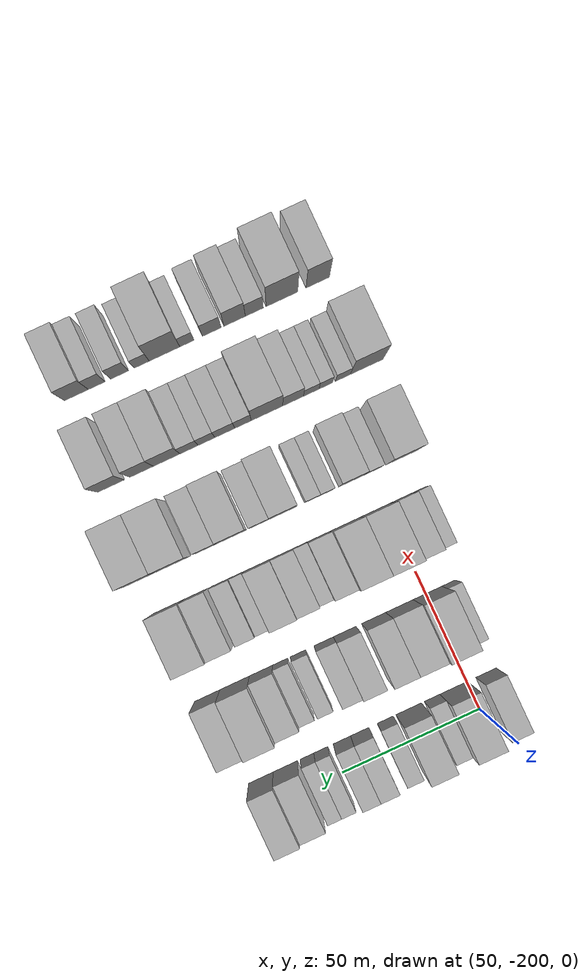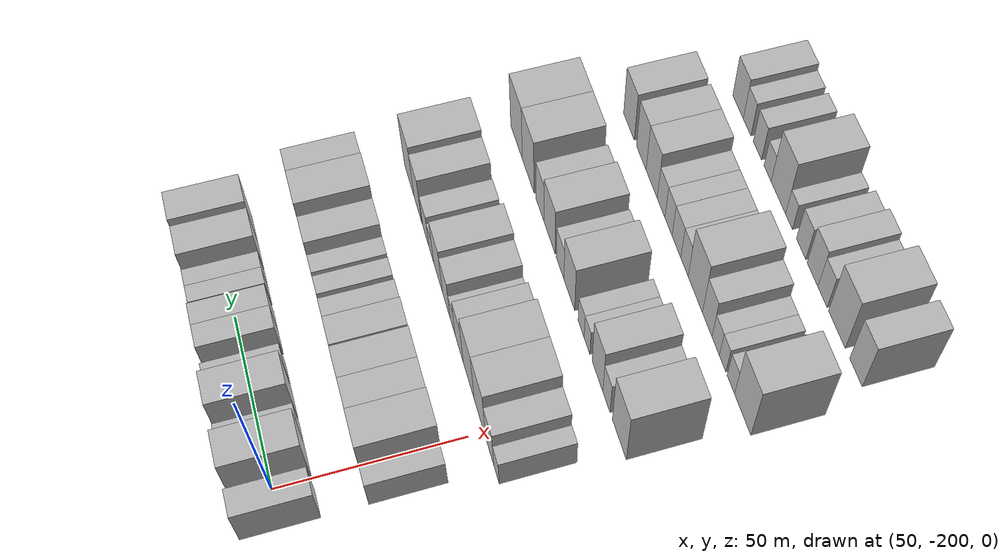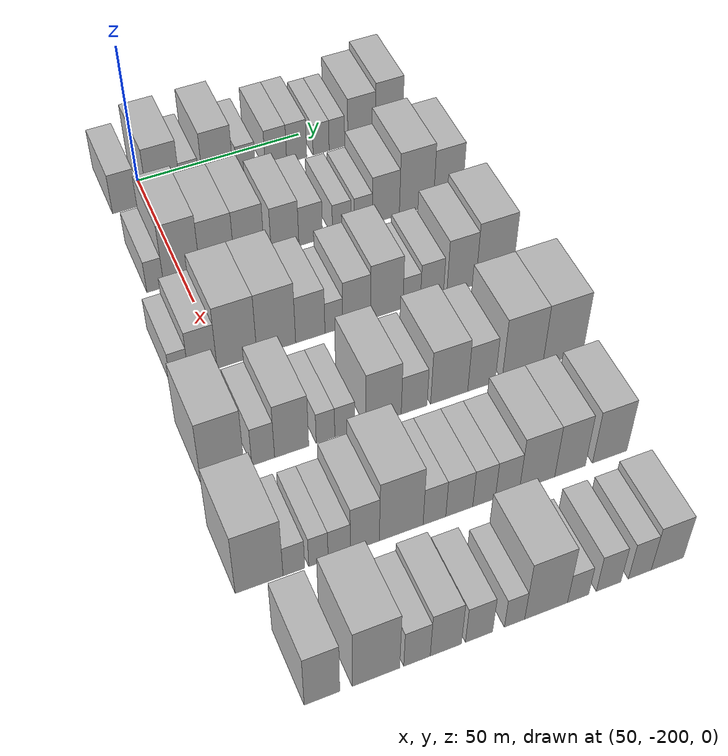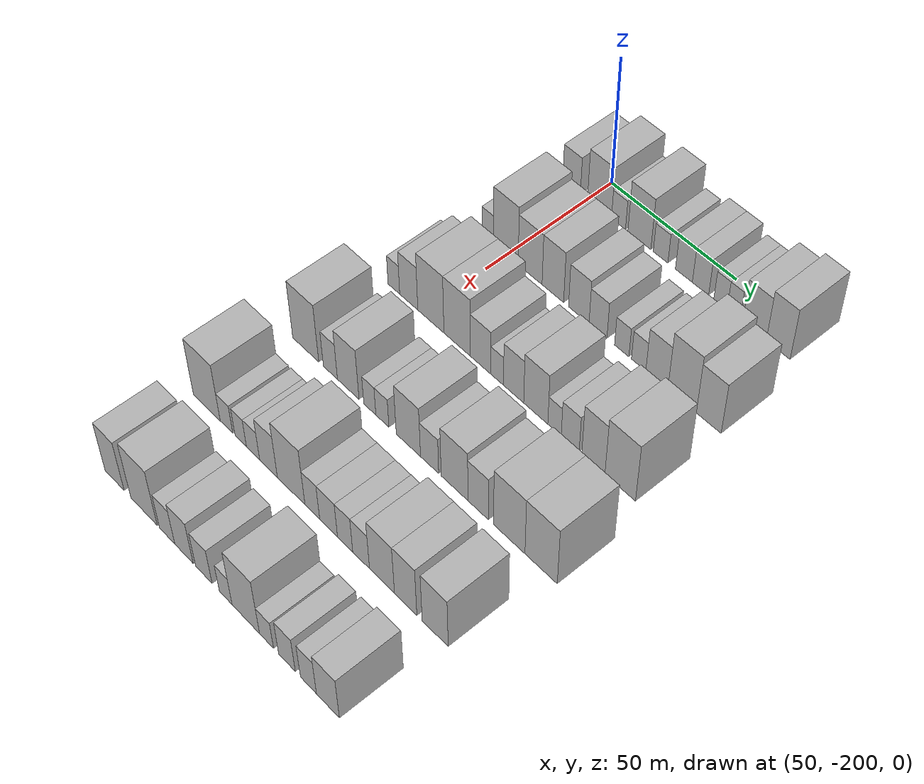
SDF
<sdf version="1.6">
 <world name="default">
  <model name="building_32">
   <static>1</static>
   <pose>50.0000 -206.8632 0 0.000000 0.000000 0.000000</pose>
   <link name="link">
    <pose>0 0 7.50 0 0 0</pose>
    <collision name="collision"><geometry><box><size>20.0000 7.4507 15.0000</size></box></geometry></collision>
    <visual name="visual">
     <cast_shadows>0</cast_shadows>
     <geometry><box><size>20.0000 7.4507 15.0000</size></box></geometry>
     <material>
      <script>
       <uri>model://HANNAS_wall/materials/scripts</uri>
       <uri>model://HANNAS_wall/materials/textures</uri>
       <name>vrc/HANNAS_wall</name>
      </script>
     </material>
    </visual>
   </link>
  </model>
  <model name="building_33">
   <static>1</static>
   <pose>50.0000 -195.1526 0 0.000000 0.000000 0.000000</pose>
   <link name="link">
    <pose>0 0 10.50 0 0 0</pose>
    <collision name="collision"><geometry><box><size>20.0000 9.9706 21.0000</size></box></geometry></collision>
    <visual name="visual">
     <cast_shadows>0</cast_shadows>
     <geometry><box><size>20.0000 9.9706 21.0000</size></box></geometry>
     <material>
      <script>
       <uri>model://HANNAS_wall/materials/scripts</uri>
       <uri>model://HANNAS_wall/materials/textures</uri>
       <name>vrc/HANNAS_wall</name>
      </script>
     </material>
    </visual>
   </link>
  </model>
  <model name="building_34">
   <static>1</static>
   <pose>50.0000 -187.2822 0 0.000000 0.000000 0.000000</pose>
   <link name="link">
    <pose>0 0 6.00 0 0 0</pose>
    <collision name="collision"><geometry><box><size>20.0000 5.7702 12.0000</size></box></geometry></collision>
    <visual name="visual">
     <cast_shadows>0</cast_shadows>
     <geometry><box><size>20.0000 5.7702 12.0000</size></box></geometry>
     <material>
      <script>
       <uri>model://HANNAS_wall/materials/scripts</uri>
       <uri>model://HANNAS_wall/materials/textures</uri>
       <name>vrc/HANNAS_wall</name>
      </script>
     </material>
    </visual>
   </link>
  </model>
  <model name="building_35">
   <static>1</static>
   <pose>50.0000 -178.7519 0 0.000000 0.000000 0.000000</pose>
   <link name="link">
    <pose>0 0 10.50 0 0 0</pose>
    <collision name="collision"><geometry><box><size>20.0000 9.2904 21.0000</size></box></geometry></collision>
    <visual name="visual">
     <cast_shadows>0</cast_shadows>
     <geometry><box><size>20.0000 9.2904 21.0000</size></box></geometry>
     <material>
      <script>
       <uri>model://HANNAS_wall/materials/scripts</uri>
       <uri>model://HANNAS_wall/materials/textures</uri>
       <name>vrc/HANNAS_wall</name>
      </script>
     </material>
    </visual>
   </link>
  </model>
  <model name="building_36">
   <static>1</static>
   <pose>50.0000 -170.1924 0 0.000000 0.000000 0.000000</pose>
   <link name="link">
    <pose>0 0 6.00 0 0 0</pose>
    <collision name="collision"><geometry><box><size>20.0000 5.8287 12.0000</size></box></geometry></collision>
    <visual name="visual">
     <cast_shadows>0</cast_shadows>
     <geometry><box><size>20.0000 5.8287 12.0000</size></box></geometry>
     <material>
      <script>
       <uri>model://HANNAS_wall/materials/scripts</uri>
       <uri>model://HANNAS_wall/materials/textures</uri>
       <name>vrc/HANNAS_wall</name>
      </script>
     </material>
    </visual>
   </link>
  </model>
  <model name="building_37">
   <static>1</static>
   <pose>50.0000 -160.9449 0 0.000000 0.000000 0.000000</pose>
   <link name="link">
    <pose>0 0 7.50 0 0 0</pose>
    <collision name="collision"><geometry><box><size>20.0000 6.6662 15.0000</size></box></geometry></collision>
    <visual name="visual">
     <cast_shadows>0</cast_shadows>
     <geometry><box><size>20.0000 6.6662 15.0000</size></box></geometry>
     <material>
      <script>
       <uri>model://HANNAS_wall/materials/scripts</uri>
       <uri>model://HANNAS_wall/materials/textures</uri>
       <name>vrc/HANNAS_wall</name>
      </script>
     </material>
    </visual>
   </link>
  </model>
  <model name="building_38">
   <static>1</static>
   <pose>50.0000 -154.4565 0 0.000000 0.000000 0.000000</pose>
   <link name="link">
    <pose>0 0 7.50 0 0 0</pose>
    <collision name="collision"><geometry><box><size>20.0000 6.3107 15.0000</size></box></geometry></collision>
    <visual name="visual">
     <cast_shadows>0</cast_shadows>
     <geometry><box><size>20.0000 6.3107 15.0000</size></box></geometry>
     <material>
      <script>
       <uri>model://HANNAS_wall/materials/scripts</uri>
       <uri>model://HANNAS_wall/materials/textures</uri>
       <name>vrc/HANNAS_wall</name>
      </script>
     </material>
    </visual>
   </link>
  </model>
  <model name="building_39">
   <static>1</static>
   <pose>50.0000 -146.7622 0 0.000000 0.000000 0.000000</pose>
   <link name="link">
    <pose>0 0 6.00 0 0 0</pose>
    <collision name="collision"><geometry><box><size>20.0000 5.0779 12.0000</size></box></geometry></collision>
    <visual name="visual">
     <cast_shadows>0</cast_shadows>
     <geometry><box><size>20.0000 5.0779 12.0000</size></box></geometry>
     <material>
      <script>
       <uri>model://HANNAS_wall/materials/scripts</uri>
       <uri>model://HANNAS_wall/materials/textures</uri>
       <name>vrc/HANNAS_wall</name>
      </script>
     </material>
    </visual>
   </link>
  </model>
  <model name="building_40">
   <static>1</static>
   <pose>50.0000 -141.7546 0 0.000000 0.000000 0.000000</pose>
   <link name="link">
    <pose>0 0 6.00 0 0 0</pose>
    <collision name="collision"><geometry><box><size>20.0000 4.9372 12.0000</size></box></geometry></collision>
    <visual name="visual">
     <cast_shadows>0</cast_shadows>
     <geometry><box><size>20.0000 4.9372 12.0000</size></box></geometry>
     <material>
      <script>
       <uri>model://HANNAS_wall/materials/scripts</uri>
       <uri>model://HANNAS_wall/materials/textures</uri>
       <name>vrc/HANNAS_wall</name>
      </script>
     </material>
    </visual>
   </link>
  </model>
  <model name="building_41">
   <static>1</static>
   <pose>50.0000 -133.8388 0 0.000000 0.000000 0.000000</pose>
   <link name="link">
    <pose>0 0 9.00 0 0 0</pose>
    <collision name="collision"><geometry><box><size>20.0000 8.8944 18.0000</size></box></geometry></collision>
    <visual name="visual">
     <cast_shadows>0</cast_shadows>
     <geometry><box><size>20.0000 8.8944 18.0000</size></box></geometry>
     <material>
      <script>
       <uri>model://HANNAS_wall/materials/scripts</uri>
       <uri>model://HANNAS_wall/materials/textures</uri>
       <name>vrc/HANNAS_wall</name>
      </script>
     </material>
    </visual>
   </link>
  </model>
  <model name="building_42">
   <static>1</static>
   <pose>50.0000 -124.9746 0 0.000000 0.000000 0.000000</pose>
   <link name="link">
    <pose>0 0 10.50 0 0 0</pose>
    <collision name="collision"><geometry><box><size>20.0000 8.8341 21.0000</size></box></geometry></collision>
    <visual name="visual">
     <cast_shadows>0</cast_shadows>
     <geometry><box><size>20.0000 8.8341 21.0000</size></box></geometry>
     <material>
      <script>
       <uri>model://HANNAS_wall/materials/scripts</uri>
       <uri>model://HANNAS_wall/materials/textures</uri>
       <name>vrc/HANNAS_wall</name>
      </script>
     </material>
    </visual>
   </link>
  </model>
  <model name="building_150">
   <static>1</static>
   <pose>82.0000 -208.1359 0 0.000000 0.000000 0.000000</pose>
   <link name="link">
    <pose>0 0 6.00 0 0 0</pose>
    <collision name="collision"><geometry><box><size>20.0000 4.9075 12.0000</size></box></geometry></collision>
    <visual name="visual">
     <cast_shadows>0</cast_shadows>
     <geometry><box><size>20.0000 4.9075 12.0000</size></box></geometry>
     <material>
      <script>
       <uri>model://HANNAS_wall/materials/scripts</uri>
       <uri>model://HANNAS_wall/materials/textures</uri>
       <name>vrc/HANNAS_wall</name>
      </script>
     </material>
    </visual>
   </link>
  </model>
  <model name="building_151">
   <static>1</static>
   <pose>82.0000 -200.4576 0 0.000000 0.000000 0.000000</pose>
   <link name="link">
    <pose>0 0 12.00 0 0 0</pose>
    <collision name="collision"><geometry><box><size>20.0000 10.4490 24.0000</size></box></geometry></collision>
    <visual name="visual">
     <cast_shadows>0</cast_shadows>
     <geometry><box><size>20.0000 10.4490 24.0000</size></box></geometry>
     <material>
      <script>
       <uri>model://HANNAS_wall/materials/scripts</uri>
       <uri>model://HANNAS_wall/materials/textures</uri>
       <name>vrc/HANNAS_wall</name>
      </script>
     </material>
    </visual>
   </link>
  </model>
  <model name="building_152">
   <static>1</static>
   <pose>82.0000 -190.2742 0 0.000000 0.000000 0.000000</pose>
   <link name="link">
    <pose>0 0 10.50 0 0 0</pose>
    <collision name="collision"><geometry><box><size>20.0000 9.9178 21.0000</size></box></geometry></collision>
    <visual name="visual">
     <cast_shadows>0</cast_shadows>
     <geometry><box><size>20.0000 9.9178 21.0000</size></box></geometry>
     <material>
      <script>
       <uri>model://HANNAS_wall/materials/scripts</uri>
       <uri>model://HANNAS_wall/materials/textures</uri>
       <name>vrc/HANNAS_wall</name>
      </script>
     </material>
    </visual>
   </link>
  </model>
  <model name="building_153">
   <static>1</static>
   <pose>82.0000 -180.9089 0 0.000000 0.000000 0.000000</pose>
   <link name="link">
    <pose>0 0 10.50 0 0 0</pose>
    <collision name="collision"><geometry><box><size>20.0000 8.8128 21.0000</size></box></geometry></collision>
    <visual name="visual">
     <cast_shadows>0</cast_shadows>
     <geometry><box><size>20.0000 8.8128 21.0000</size></box></geometry>
     <material>
      <script>
       <uri>model://HANNAS_wall/materials/scripts</uri>
       <uri>model://HANNAS_wall/materials/textures</uri>
       <name>vrc/HANNAS_wall</name>
      </script>
     </material>
    </visual>
   </link>
  </model>
  <model name="building_154">
   <static>1</static>
   <pose>82.0000 -170.4029 0 0.000000 0.000000 0.000000</pose>
   <link name="link">
    <pose>0 0 9.00 0 0 0</pose>
    <collision name="collision"><geometry><box><size>20.0000 8.1992 18.0000</size></box></geometry></collision>
    <visual name="visual">
     <cast_shadows>0</cast_shadows>
     <geometry><box><size>20.0000 8.1992 18.0000</size></box></geometry>
     <material>
      <script>
       <uri>model://HANNAS_wall/materials/scripts</uri>
       <uri>model://HANNAS_wall/materials/textures</uri>
       <name>vrc/HANNAS_wall</name>
      </script>
     </material>
    </visual>
   </link>
  </model>
  <model name="building_155">
   <static>1</static>
   <pose>82.0000 -162.7639 0 0.000000 0.000000 0.000000</pose>
   <link name="link">
    <pose>0 0 7.50 0 0 0</pose>
    <collision name="collision"><geometry><box><size>20.0000 7.0787 15.0000</size></box></geometry></collision>
    <visual name="visual">
     <cast_shadows>0</cast_shadows>
     <geometry><box><size>20.0000 7.0787 15.0000</size></box></geometry>
     <material>
      <script>
       <uri>model://HANNAS_wall/materials/scripts</uri>
       <uri>model://HANNAS_wall/materials/textures</uri>
       <name>vrc/HANNAS_wall</name>
      </script>
     </material>
    </visual>
   </link>
  </model>
  <model name="building_156">
   <static>1</static>
   <pose>82.0000 -153.4299 0 0.000000 0.000000 0.000000</pose>
   <link name="link">
    <pose>0 0 6.00 0 0 0</pose>
    <collision name="collision"><geometry><box><size>20.0000 5.5893 12.0000</size></box></geometry></collision>
    <visual name="visual">
     <cast_shadows>0</cast_shadows>
     <geometry><box><size>20.0000 5.5893 12.0000</size></box></geometry>
     <material>
      <script>
       <uri>model://HANNAS_wall/materials/scripts</uri>
       <uri>model://HANNAS_wall/materials/textures</uri>
       <name>vrc/HANNAS_wall</name>
      </script>
     </material>
    </visual>
   </link>
  </model>
  <model name="building_157">
   <static>1</static>
   <pose>82.0000 -146.8723 0 0.000000 0.000000 0.000000</pose>
   <link name="link">
    <pose>0 0 6.00 0 0 0</pose>
    <collision name="collision"><geometry><box><size>20.0000 5.5259 12.0000</size></box></geometry></collision>
    <visual name="visual">
     <cast_shadows>0</cast_shadows>
     <geometry><box><size>20.0000 5.5259 12.0000</size></box></geometry>
     <material>
      <script>
       <uri>model://HANNAS_wall/materials/scripts</uri>
       <uri>model://HANNAS_wall/materials/textures</uri>
       <name>vrc/HANNAS_wall</name>
      </script>
     </material>
    </visual>
   </link>
  </model>
  <model name="building_158">
   <static>1</static>
   <pose>82.0000 -139.9272 0 0.000000 0.000000 0.000000</pose>
   <link name="link">
    <pose>0 0 9.00 0 0 0</pose>
    <collision name="collision"><geometry><box><size>20.0000 8.3643 18.0000</size></box></geometry></collision>
    <visual name="visual">
     <cast_shadows>0</cast_shadows>
     <geometry><box><size>20.0000 8.3643 18.0000</size></box></geometry>
     <material>
      <script>
       <uri>model://HANNAS_wall/materials/scripts</uri>
       <uri>model://HANNAS_wall/materials/textures</uri>
       <name>vrc/HANNAS_wall</name>
      </script>
     </material>
    </visual>
   </link>
  </model>
  <model name="building_159">
   <static>1</static>
   <pose>82.0000 -130.4219 0 0.000000 0.000000 0.000000</pose>
   <link name="link">
    <pose>0 0 12.00 0 0 0</pose>
    <collision name="collision"><geometry><box><size>20.0000 10.6463 24.0000</size></box></geometry></collision>
    <visual name="visual">
     <cast_shadows>0</cast_shadows>
     <geometry><box><size>20.0000 10.6463 24.0000</size></box></geometry>
     <material>
      <script>
       <uri>model://HANNAS_wall/materials/scripts</uri>
       <uri>model://HANNAS_wall/materials/textures</uri>
       <name>vrc/HANNAS_wall</name>
      </script>
     </material>
    </visual>
   </link>
  </model>
  <model name="building_160">
   <static>1</static>
   <pose>82.0000 -120.5287 0 0.000000 0.000000 0.000000</pose>
   <link name="link">
    <pose>0 0 10.50 0 0 0</pose>
    <collision name="collision"><geometry><box><size>20.0000 9.1401 21.0000</size></box></geometry></collision>
    <visual name="visual">
     <cast_shadows>0</cast_shadows>
     <geometry><box><size>20.0000 9.1401 21.0000</size></box></geometry>
     <material>
      <script>
       <uri>model://HANNAS_wall/materials/scripts</uri>
       <uri>model://HANNAS_wall/materials/textures</uri>
       <name>vrc/HANNAS_wall</name>
      </script>
     </material>
    </visual>
   </link>
  </model>
  <model name="building_274">
   <static>1</static>
   <pose>114.0000 -211.9448 0 0.000000 0.000000 0.000000</pose>
   <link name="link">
    <pose>0 0 6.00 0 0 0</pose>
    <collision name="collision"><geometry><box><size>20.0000 5.0300 12.0000</size></box></geometry></collision>
    <visual name="visual">
     <cast_shadows>0</cast_shadows>
     <geometry><box><size>20.0000 5.0300 12.0000</size></box></geometry>
     <material>
      <script>
       <uri>model://HANNAS_wall/materials/scripts</uri>
       <uri>model://HANNAS_wall/materials/textures</uri>
       <name>vrc/HANNAS_wall</name>
      </script>
     </material>
    </visual>
   </link>
  </model>
  <model name="building_275">
   <static>1</static>
   <pose>114.0000 -205.5532 0 0.000000 0.000000 0.000000</pose>
   <link name="link">
    <pose>0 0 9.00 0 0 0</pose>
    <collision name="collision"><geometry><box><size>20.0000 7.7530 18.0000</size></box></geometry></collision>
    <visual name="visual">
     <cast_shadows>0</cast_shadows>
     <geometry><box><size>20.0000 7.7530 18.0000</size></box></geometry>
     <material>
      <script>
       <uri>model://HANNAS_wall/materials/scripts</uri>
       <uri>model://HANNAS_wall/materials/textures</uri>
       <name>vrc/HANNAS_wall</name>
      </script>
     </material>
    </visual>
   </link>
  </model>
  <model name="building_276">
   <static>1</static>
   <pose>114.0000 -196.1657 0 0.000000 0.000000 0.000000</pose>
   <link name="link">
    <pose>0 0 12.00 0 0 0</pose>
    <collision name="collision"><geometry><box><size>20.0000 11.0221 24.0000</size></box></geometry></collision>
    <visual name="visual">
     <cast_shadows>0</cast_shadows>
     <geometry><box><size>20.0000 11.0221 24.0000</size></box></geometry>
     <material>
      <script>
       <uri>model://HANNAS_wall/materials/scripts</uri>
       <uri>model://HANNAS_wall/materials/textures</uri>
       <name>vrc/HANNAS_wall</name>
      </script>
     </material>
    </visual>
   </link>
  </model>
  <model name="building_277">
   <static>1</static>
   <pose>114.0000 -185.2093 0 0.000000 0.000000 0.000000</pose>
   <link name="link">
    <pose>0 0 12.00 0 0 0</pose>
    <collision name="collision"><geometry><box><size>20.0000 10.8906 24.0000</size></box></geometry></collision>
    <visual name="visual">
     <cast_shadows>0</cast_shadows>
     <geometry><box><size>20.0000 10.8906 24.0000</size></box></geometry>
     <material>
      <script>
       <uri>model://HANNAS_wall/materials/scripts</uri>
       <uri>model://HANNAS_wall/materials/textures</uri>
       <name>vrc/HANNAS_wall</name>
      </script>
     </material>
    </visual>
   </link>
  </model>
  <model name="building_278">
   <static>1</static>
   <pose>114.0000 -175.5961 0 0.000000 0.000000 0.000000</pose>
   <link name="link">
    <pose>0 0 9.00 0 0 0</pose>
    <collision name="collision"><geometry><box><size>20.0000 8.3359 18.0000</size></box></geometry></collision>
    <visual name="visual">
     <cast_shadows>0</cast_shadows>
     <geometry><box><size>20.0000 8.3359 18.0000</size></box></geometry>
     <material>
      <script>
       <uri>model://HANNAS_wall/materials/scripts</uri>
       <uri>model://HANNAS_wall/materials/textures</uri>
       <name>vrc/HANNAS_wall</name>
      </script>
     </material>
    </visual>
   </link>
  </model>
  <model name="building_279">
   <static>1</static>
   <pose>114.0000 -168.8799 0 0.000000 0.000000 0.000000</pose>
   <link name="link">
    <pose>0 0 6.00 0 0 0</pose>
    <collision name="collision"><geometry><box><size>20.0000 5.0964 12.0000</size></box></geometry></collision>
    <visual name="visual">
     <cast_shadows>0</cast_shadows>
     <geometry><box><size>20.0000 5.0964 12.0000</size></box></geometry>
     <material>
      <script>
       <uri>model://HANNAS_wall/materials/scripts</uri>
       <uri>model://HANNAS_wall/materials/textures</uri>
       <name>vrc/HANNAS_wall</name>
      </script>
     </material>
    </visual>
   </link>
  </model>
  <model name="building_280">
   <static>1</static>
   <pose>114.0000 -162.3129 0 0.000000 0.000000 0.000000</pose>
   <link name="link">
    <pose>0 0 9.00 0 0 0</pose>
    <collision name="collision"><geometry><box><size>20.0000 8.0375 18.0000</size></box></geometry></collision>
    <visual name="visual">
     <cast_shadows>0</cast_shadows>
     <geometry><box><size>20.0000 8.0375 18.0000</size></box></geometry>
     <material>
      <script>
       <uri>model://HANNAS_wall/materials/scripts</uri>
       <uri>model://HANNAS_wall/materials/textures</uri>
       <name>vrc/HANNAS_wall</name>
      </script>
     </material>
    </visual>
   </link>
  </model>
  <model name="building_281">
   <static>1</static>
   <pose>114.0000 -153.5759 0 0.000000 0.000000 0.000000</pose>
   <link name="link">
    <pose>0 0 10.50 0 0 0</pose>
    <collision name="collision"><geometry><box><size>20.0000 9.4365 21.0000</size></box></geometry></collision>
    <visual name="visual">
     <cast_shadows>0</cast_shadows>
     <geometry><box><size>20.0000 9.4365 21.0000</size></box></geometry>
     <material>
      <script>
       <uri>model://HANNAS_wall/materials/scripts</uri>
       <uri>model://HANNAS_wall/materials/textures</uri>
       <name>vrc/HANNAS_wall</name>
      </script>
     </material>
    </visual>
   </link>
  </model>
  <model name="building_282">
   <static>1</static>
   <pose>114.0000 -146.2749 0 0.000000 0.000000 0.000000</pose>
   <link name="link">
    <pose>0 0 6.00 0 0 0</pose>
    <collision name="collision"><geometry><box><size>20.0000 5.1656 12.0000</size></box></geometry></collision>
    <visual name="visual">
     <cast_shadows>0</cast_shadows>
     <geometry><box><size>20.0000 5.1656 12.0000</size></box></geometry>
     <material>
      <script>
       <uri>model://HANNAS_wall/materials/scripts</uri>
       <uri>model://HANNAS_wall/materials/textures</uri>
       <name>vrc/HANNAS_wall</name>
      </script>
     </material>
    </visual>
   </link>
  </model>
  <model name="building_283">
   <static>1</static>
   <pose>114.0000 -140.2646 0 0.000000 0.000000 0.000000</pose>
   <link name="link">
    <pose>0 0 7.50 0 0 0</pose>
    <collision name="collision"><geometry><box><size>20.0000 6.8550 15.0000</size></box></geometry></collision>
    <visual name="visual">
     <cast_shadows>0</cast_shadows>
     <geometry><box><size>20.0000 6.8550 15.0000</size></box></geometry>
     <material>
      <script>
       <uri>model://HANNAS_wall/materials/scripts</uri>
       <uri>model://HANNAS_wall/materials/textures</uri>
       <name>vrc/HANNAS_wall</name>
      </script>
     </material>
    </visual>
   </link>
  </model>
  <model name="building_284">
   <static>1</static>
   <pose>114.0000 -131.4898 0 0.000000 0.000000 0.000000</pose>
   <link name="link">
    <pose>0 0 10.50 0 0 0</pose>
    <collision name="collision"><geometry><box><size>20.0000 8.6945 21.0000</size></box></geometry></collision>
    <visual name="visual">
     <cast_shadows>0</cast_shadows>
     <geometry><box><size>20.0000 8.6945 21.0000</size></box></geometry>
     <material>
      <script>
       <uri>model://HANNAS_wall/materials/scripts</uri>
       <uri>model://HANNAS_wall/materials/textures</uri>
       <name>vrc/HANNAS_wall</name>
      </script>
     </material>
    </visual>
   </link>
  </model>
  <model name="building_285">
   <static>1</static>
   <pose>114.0000 -121.4947 0 0.000000 0.000000 0.000000</pose>
   <link name="link">
    <pose>0 0 12.00 0 0 0</pose>
    <collision name="collision"><geometry><box><size>20.0000 11.2957 24.0000</size></box></geometry></collision>
    <visual name="visual">
     <cast_shadows>0</cast_shadows>
     <geometry><box><size>20.0000 11.2957 24.0000</size></box></geometry>
     <material>
      <script>
       <uri>model://HANNAS_wall/materials/scripts</uri>
       <uri>model://HANNAS_wall/materials/textures</uri>
       <name>vrc/HANNAS_wall</name>
      </script>
     </material>
    </visual>
   </link>
  </model>
  <model name="building_386">
   <static>1</static>
   <pose>146.0000 -211.5317 0 0.000000 0.000000 0.000000</pose>
   <link name="link">
    <pose>0 0 12.00 0 0 0</pose>
    <collision name="collision"><geometry><box><size>20.0000 11.3479 24.0000</size></box></geometry></collision>
    <visual name="visual">
     <cast_shadows>0</cast_shadows>
     <geometry><box><size>20.0000 11.3479 24.0000</size></box></geometry>
     <material>
      <script>
       <uri>model://HANNAS_wall/materials/scripts</uri>
       <uri>model://HANNAS_wall/materials/textures</uri>
       <name>vrc/HANNAS_wall</name>
      </script>
     </material>
    </visual>
   </link>
  </model>
  <model name="building_387">
   <static>1</static>
   <pose>146.0000 -200.8470 0 0.000000 0.000000 0.000000</pose>
   <link name="link">
    <pose>0 0 7.50 0 0 0</pose>
    <collision name="collision"><geometry><box><size>20.0000 6.0215 15.0000</size></box></geometry></collision>
    <visual name="visual">
     <cast_shadows>0</cast_shadows>
     <geometry><box><size>20.0000 6.0215 15.0000</size></box></geometry>
     <material>
      <script>
       <uri>model://HANNAS_wall/materials/scripts</uri>
       <uri>model://HANNAS_wall/materials/textures</uri>
       <name>vrc/HANNAS_wall</name>
      </script>
     </material>
    </visual>
   </link>
  </model>
  <model name="building_388">
   <static>1</static>
   <pose>146.0000 -193.2814 0 0.000000 0.000000 0.000000</pose>
   <link name="link">
    <pose>0 0 10.50 0 0 0</pose>
    <collision name="collision"><geometry><box><size>20.0000 9.1096 21.0000</size></box></geometry></collision>
    <visual name="visual">
     <cast_shadows>0</cast_shadows>
     <geometry><box><size>20.0000 9.1096 21.0000</size></box></geometry>
     <material>
      <script>
       <uri>model://HANNAS_wall/materials/scripts</uri>
       <uri>model://HANNAS_wall/materials/textures</uri>
       <name>vrc/HANNAS_wall</name>
      </script>
     </material>
    </visual>
   </link>
  </model>
  <model name="building_389">
   <static>1</static>
   <pose>146.0000 -184.2181 0 0.000000 0.000000 0.000000</pose>
   <link name="link">
    <pose>0 0 6.00 0 0 0</pose>
    <collision name="collision"><geometry><box><size>20.0000 5.0170 12.0000</size></box></geometry></collision>
    <visual name="visual">
     <cast_shadows>0</cast_shadows>
     <geometry><box><size>20.0000 5.0170 12.0000</size></box></geometry>
     <material>
      <script>
       <uri>model://HANNAS_wall/materials/scripts</uri>
       <uri>model://HANNAS_wall/materials/textures</uri>
       <name>vrc/HANNAS_wall</name>
      </script>
     </material>
    </visual>
   </link>
  </model>
  <model name="building_390">
   <static>1</static>
   <pose>146.0000 -179.0176 0 0.000000 0.000000 0.000000</pose>
   <link name="link">
    <pose>0 0 6.00 0 0 0</pose>
    <collision name="collision"><geometry><box><size>20.0000 5.3839 12.0000</size></box></geometry></collision>
    <visual name="visual">
     <cast_shadows>0</cast_shadows>
     <geometry><box><size>20.0000 5.3839 12.0000</size></box></geometry>
     <material>
      <script>
       <uri>model://HANNAS_wall/materials/scripts</uri>
       <uri>model://HANNAS_wall/materials/textures</uri>
       <name>vrc/HANNAS_wall</name>
      </script>
     </material>
    </visual>
   </link>
  </model>
  <model name="building_391">
   <static>1</static>
   <pose>146.0000 -168.4162 0 0.000000 0.000000 0.000000</pose>
   <link name="link">
    <pose>0 0 10.50 0 0 0</pose>
    <collision name="collision"><geometry><box><size>20.0000 9.8189 21.0000</size></box></geometry></collision>
    <visual name="visual">
     <cast_shadows>0</cast_shadows>
     <geometry><box><size>20.0000 9.8189 21.0000</size></box></geometry>
     <material>
      <script>
       <uri>model://HANNAS_wall/materials/scripts</uri>
       <uri>model://HANNAS_wall/materials/textures</uri>
       <name>vrc/HANNAS_wall</name>
      </script>
     </material>
    </visual>
   </link>
  </model>
  <model name="building_392">
   <static>1</static>
   <pose>146.0000 -159.8961 0 0.000000 0.000000 0.000000</pose>
   <link name="link">
    <pose>0 0 7.50 0 0 0</pose>
    <collision name="collision"><geometry><box><size>20.0000 7.2212 15.0000</size></box></geometry></collision>
    <visual name="visual">
     <cast_shadows>0</cast_shadows>
     <geometry><box><size>20.0000 7.2212 15.0000</size></box></geometry>
     <material>
      <script>
       <uri>model://HANNAS_wall/materials/scripts</uri>
       <uri>model://HANNAS_wall/materials/textures</uri>
       <name>vrc/HANNAS_wall</name>
      </script>
     </material>
    </visual>
   </link>
  </model>
  <model name="building_393">
   <static>1</static>
   <pose>146.0000 -150.0481 0 0.000000 0.000000 0.000000</pose>
   <link name="link">
    <pose>0 0 10.50 0 0 0</pose>
    <collision name="collision"><geometry><box><size>20.0000 10.4748 21.0000</size></box></geometry></collision>
    <visual name="visual">
     <cast_shadows>0</cast_shadows>
     <geometry><box><size>20.0000 10.4748 21.0000</size></box></geometry>
     <material>
      <script>
       <uri>model://HANNAS_wall/materials/scripts</uri>
       <uri>model://HANNAS_wall/materials/textures</uri>
       <name>vrc/HANNAS_wall</name>
      </script>
     </material>
    </visual>
   </link>
  </model>
  <model name="building_394">
   <static>1</static>
   <pose>146.0000 -140.8949 0 0.000000 0.000000 0.000000</pose>
   <link name="link">
    <pose>0 0 9.00 0 0 0</pose>
    <collision name="collision"><geometry><box><size>20.0000 7.8314 18.0000</size></box></geometry></collision>
    <visual name="visual">
     <cast_shadows>0</cast_shadows>
     <geometry><box><size>20.0000 7.8314 18.0000</size></box></geometry>
     <material>
      <script>
       <uri>model://HANNAS_wall/materials/scripts</uri>
       <uri>model://HANNAS_wall/materials/textures</uri>
       <name>vrc/HANNAS_wall</name>
      </script>
     </material>
    </visual>
   </link>
  </model>
  <model name="building_395">
   <static>1</static>
   <pose>146.0000 -129.0957 0 0.000000 0.000000 0.000000</pose>
   <link name="link">
    <pose>0 0 12.00 0 0 0</pose>
    <collision name="collision"><geometry><box><size>20.0000 11.7671 24.0000</size></box></geometry></collision>
    <visual name="visual">
     <cast_shadows>0</cast_shadows>
     <geometry><box><size>20.0000 11.7671 24.0000</size></box></geometry>
     <material>
      <script>
       <uri>model://HANNAS_wall/materials/scripts</uri>
       <uri>model://HANNAS_wall/materials/textures</uri>
       <name>vrc/HANNAS_wall</name>
      </script>
     </material>
    </visual>
   </link>
  </model>
  <model name="building_396">
   <static>1</static>
   <pose>146.0000 -117.2614 0 0.000000 0.000000 0.000000</pose>
   <link name="link">
    <pose>0 0 12.00 0 0 0</pose>
    <collision name="collision"><geometry><box><size>20.0000 11.9014 24.0000</size></box></geometry></collision>
    <visual name="visual">
     <cast_shadows>0</cast_shadows>
     <geometry><box><size>20.0000 11.9014 24.0000</size></box></geometry>
     <material>
      <script>
       <uri>model://HANNAS_wall/materials/scripts</uri>
       <uri>model://HANNAS_wall/materials/textures</uri>
       <name>vrc/HANNAS_wall</name>
      </script>
     </material>
    </visual>
   </link>
  </model>
  <model name="building_498">
   <static>1</static>
   <pose>178.0000 -213.8368 0 0.000000 0.000000 0.000000</pose>
   <link name="link">
    <pose>0 0 12.00 0 0 0</pose>
    <collision name="collision"><geometry><box><size>20.0000 11.9091 24.0000</size></box></geometry></collision>
    <visual name="visual">
     <cast_shadows>0</cast_shadows>
     <geometry><box><size>20.0000 11.9091 24.0000</size></box></geometry>
     <material>
      <script>
       <uri>model://HANNAS_wall/materials/scripts</uri>
       <uri>model://HANNAS_wall/materials/textures</uri>
       <name>vrc/HANNAS_wall</name>
      </script>
     </material>
    </visual>
   </link>
  </model>
  <model name="building_499">
   <static>1</static>
   <pose>178.0000 -205.1508 0 0.000000 0.000000 0.000000</pose>
   <link name="link">
    <pose>0 0 6.00 0 0 0</pose>
    <collision name="collision"><geometry><box><size>20.0000 5.4629 12.0000</size></box></geometry></collision>
    <visual name="visual">
     <cast_shadows>0</cast_shadows>
     <geometry><box><size>20.0000 5.4629 12.0000</size></box></geometry>
     <material>
      <script>
       <uri>model://HANNAS_wall/materials/scripts</uri>
       <uri>model://HANNAS_wall/materials/textures</uri>
       <name>vrc/HANNAS_wall</name>
      </script>
     </material>
    </visual>
   </link>
  </model>
  <model name="building_500">
   <static>1</static>
   <pose>178.0000 -198.9636 0 0.000000 0.000000 0.000000</pose>
   <link name="link">
    <pose>0 0 6.00 0 0 0</pose>
    <collision name="collision"><geometry><box><size>20.0000 4.9115 12.0000</size></box></geometry></collision>
    <visual name="visual">
     <cast_shadows>0</cast_shadows>
     <geometry><box><size>20.0000 4.9115 12.0000</size></box></geometry>
     <material>
      <script>
       <uri>model://HANNAS_wall/materials/scripts</uri>
       <uri>model://HANNAS_wall/materials/textures</uri>
       <name>vrc/HANNAS_wall</name>
      </script>
     </material>
    </visual>
   </link>
  </model>
  <model name="building_501">
   <static>1</static>
   <pose>178.0000 -193.6823 0 0.000000 0.000000 0.000000</pose>
   <link name="link">
    <pose>0 0 6.00 0 0 0</pose>
    <collision name="collision"><geometry><box><size>20.0000 5.6511 12.0000</size></box></geometry></collision>
    <visual name="visual">
     <cast_shadows>0</cast_shadows>
     <geometry><box><size>20.0000 5.6511 12.0000</size></box></geometry>
     <material>
      <script>
       <uri>model://HANNAS_wall/materials/scripts</uri>
       <uri>model://HANNAS_wall/materials/textures</uri>
       <name>vrc/HANNAS_wall</name>
      </script>
     </material>
    </visual>
   </link>
  </model>
  <model name="building_502">
   <static>1</static>
   <pose>178.0000 -187.1135 0 0.000000 0.000000 0.000000</pose>
   <link name="link">
    <pose>0 0 9.00 0 0 0</pose>
    <collision name="collision"><geometry><box><size>20.0000 7.4864 18.0000</size></box></geometry></collision>
    <visual name="visual">
     <cast_shadows>0</cast_shadows>
     <geometry><box><size>20.0000 7.4864 18.0000</size></box></geometry>
     <material>
      <script>
       <uri>model://HANNAS_wall/materials/scripts</uri>
       <uri>model://HANNAS_wall/materials/textures</uri>
       <name>vrc/HANNAS_wall</name>
      </script>
     </material>
    </visual>
   </link>
  </model>
  <model name="building_503">
   <static>1</static>
   <pose>178.0000 -177.6545 0 0.000000 0.000000 0.000000</pose>
   <link name="link">
    <pose>0 0 12.00 0 0 0</pose>
    <collision name="collision"><geometry><box><size>20.0000 11.4316 24.0000</size></box></geometry></collision>
    <visual name="visual">
     <cast_shadows>0</cast_shadows>
     <geometry><box><size>20.0000 11.4316 24.0000</size></box></geometry>
     <material>
      <script>
       <uri>model://HANNAS_wall/materials/scripts</uri>
       <uri>model://HANNAS_wall/materials/textures</uri>
       <name>vrc/HANNAS_wall</name>
      </script>
     </material>
    </visual>
   </link>
  </model>
  <model name="building_504">
   <static>1</static>
   <pose>178.0000 -168.9298 0 0.000000 0.000000 0.000000</pose>
   <link name="link">
    <pose>0 0 7.50 0 0 0</pose>
    <collision name="collision"><geometry><box><size>20.0000 6.0178 15.0000</size></box></geometry></collision>
    <visual name="visual">
     <cast_shadows>0</cast_shadows>
     <geometry><box><size>20.0000 6.0178 15.0000</size></box></geometry>
     <material>
      <script>
       <uri>model://HANNAS_wall/materials/scripts</uri>
       <uri>model://HANNAS_wall/materials/textures</uri>
       <name>vrc/HANNAS_wall</name>
      </script>
     </material>
    </visual>
   </link>
  </model>
  <model name="building_505">
   <static>1</static>
   <pose>178.0000 -162.3244 0 0.000000 0.000000 0.000000</pose>
   <link name="link">
    <pose>0 0 7.50 0 0 0</pose>
    <collision name="collision"><geometry><box><size>20.0000 7.1929 15.0000</size></box></geometry></collision>
    <visual name="visual">
     <cast_shadows>0</cast_shadows>
     <geometry><box><size>20.0000 7.1929 15.0000</size></box></geometry>
     <material>
      <script>
       <uri>model://HANNAS_wall/materials/scripts</uri>
       <uri>model://HANNAS_wall/materials/textures</uri>
       <name>vrc/HANNAS_wall</name>
      </script>
     </material>
    </visual>
   </link>
  </model>
  <model name="building_506">
   <static>1</static>
   <pose>178.0000 -155.6970 0 0.000000 0.000000 0.000000</pose>
   <link name="link">
    <pose>0 0 7.50 0 0 0</pose>
    <collision name="collision"><geometry><box><size>20.0000 6.0618 15.0000</size></box></geometry></collision>
    <visual name="visual">
     <cast_shadows>0</cast_shadows>
     <geometry><box><size>20.0000 6.0618 15.0000</size></box></geometry>
     <material>
      <script>
       <uri>model://HANNAS_wall/materials/scripts</uri>
       <uri>model://HANNAS_wall/materials/textures</uri>
       <name>vrc/HANNAS_wall</name>
      </script>
     </material>
    </visual>
   </link>
  </model>
  <model name="building_507">
   <static>1</static>
   <pose>178.0000 -149.3744 0 0.000000 0.000000 0.000000</pose>
   <link name="link">
    <pose>0 0 7.50 0 0 0</pose>
    <collision name="collision"><geometry><box><size>20.0000 6.5835 15.0000</size></box></geometry></collision>
    <visual name="visual">
     <cast_shadows>0</cast_shadows>
     <geometry><box><size>20.0000 6.5835 15.0000</size></box></geometry>
     <material>
      <script>
       <uri>model://HANNAS_wall/materials/scripts</uri>
       <uri>model://HANNAS_wall/materials/textures</uri>
       <name>vrc/HANNAS_wall</name>
      </script>
     </material>
    </visual>
   </link>
  </model>
  <model name="building_508">
   <static>1</static>
   <pose>178.0000 -141.2409 0 0.000000 0.000000 0.000000</pose>
   <link name="link">
    <pose>0 0 10.50 0 0 0</pose>
    <collision name="collision"><geometry><box><size>20.0000 9.6834 21.0000</size></box></geometry></collision>
    <visual name="visual">
     <cast_shadows>0</cast_shadows>
     <geometry><box><size>20.0000 9.6834 21.0000</size></box></geometry>
     <material>
      <script>
       <uri>model://HANNAS_wall/materials/scripts</uri>
       <uri>model://HANNAS_wall/materials/textures</uri>
       <name>vrc/HANNAS_wall</name>
      </script>
     </material>
    </visual>
   </link>
  </model>
  <model name="building_509">
   <static>1</static>
   <pose>178.0000 -132.1411 0 0.000000 0.000000 0.000000</pose>
   <link name="link">
    <pose>0 0 10.50 0 0 0</pose>
    <collision name="collision"><geometry><box><size>20.0000 8.5162 21.0000</size></box></geometry></collision>
    <visual name="visual">
     <cast_shadows>0</cast_shadows>
     <geometry><box><size>20.0000 8.5162 21.0000</size></box></geometry>
     <material>
      <script>
       <uri>model://HANNAS_wall/materials/scripts</uri>
       <uri>model://HANNAS_wall/materials/textures</uri>
       <name>vrc/HANNAS_wall</name>
      </script>
     </material>
    </visual>
   </link>
  </model>
  <model name="building_510">
   <static>1</static>
   <pose>178.0000 -121.0287 0 0.000000 0.000000 0.000000</pose>
   <link name="link">
    <pose>0 0 10.50 0 0 0</pose>
    <collision name="collision"><geometry><box><size>20.0000 9.7086 21.0000</size></box></geometry></collision>
    <visual name="visual">
     <cast_shadows>0</cast_shadows>
     <geometry><box><size>20.0000 9.7086 21.0000</size></box></geometry>
     <material>
      <script>
       <uri>model://HANNAS_wall/materials/scripts</uri>
       <uri>model://HANNAS_wall/materials/textures</uri>
       <name>vrc/HANNAS_wall</name>
      </script>
     </material>
    </visual>
   </link>
  </model>
  <model name="building_620">
   <static>1</static>
   <pose>210.0000 -210.9722 0 0.000000 0.000000 0.000000</pose>
   <link name="link">
    <pose>0 0 10.50 0 0 0</pose>
    <collision name="collision"><geometry><box><size>20.0000 8.4797 21.0000</size></box></geometry></collision>
    <visual name="visual">
     <cast_shadows>0</cast_shadows>
     <geometry><box><size>20.0000 8.4797 21.0000</size></box></geometry>
     <material>
      <script>
       <uri>model://HANNAS_wall/materials/scripts</uri>
       <uri>model://HANNAS_wall/materials/textures</uri>
       <name>vrc/HANNAS_wall</name>
      </script>
     </material>
    </visual>
   </link>
  </model>
  <model name="building_621">
   <static>1</static>
   <pose>210.0000 -197.9754 0 0.000000 0.000000 0.000000</pose>
   <link name="link">
    <pose>0 0 12.00 0 0 0</pose>
    <collision name="collision"><geometry><box><size>20.0000 11.5139 24.0000</size></box></geometry></collision>
    <visual name="visual">
     <cast_shadows>0</cast_shadows>
     <geometry><box><size>20.0000 11.5139 24.0000</size></box></geometry>
     <material>
      <script>
       <uri>model://HANNAS_wall/materials/scripts</uri>
       <uri>model://HANNAS_wall/materials/textures</uri>
       <name>vrc/HANNAS_wall</name>
      </script>
     </material>
    </visual>
   </link>
  </model>
  <model name="building_622">
   <static>1</static>
   <pose>210.0000 -187.9507 0 0.000000 0.000000 0.000000</pose>
   <link name="link">
    <pose>0 0 7.50 0 0 0</pose>
    <collision name="collision"><geometry><box><size>20.0000 6.5355 15.0000</size></box></geometry></collision>
    <visual name="visual">
     <cast_shadows>0</cast_shadows>
     <geometry><box><size>20.0000 6.5355 15.0000</size></box></geometry>
     <material>
      <script>
       <uri>model://HANNAS_wall/materials/scripts</uri>
       <uri>model://HANNAS_wall/materials/textures</uri>
       <name>vrc/HANNAS_wall</name>
      </script>
     </material>
    </visual>
   </link>
  </model>
  <model name="building_623">
   <static>1</static>
   <pose>210.0000 -180.7993 0 0.000000 0.000000 0.000000</pose>
   <link name="link">
    <pose>0 0 9.00 0 0 0</pose>
    <collision name="collision"><geometry><box><size>20.0000 7.7673 18.0000</size></box></geometry></collision>
    <visual name="visual">
     <cast_shadows>0</cast_shadows>
     <geometry><box><size>20.0000 7.7673 18.0000</size></box></geometry>
     <material>
      <script>
       <uri>model://HANNAS_wall/materials/scripts</uri>
       <uri>model://HANNAS_wall/materials/textures</uri>
       <name>vrc/HANNAS_wall</name>
      </script>
     </material>
    </visual>
   </link>
  </model>
  <model name="building_624">
   <static>1</static>
   <pose>210.0000 -172.4922 0 0.000000 0.000000 0.000000</pose>
   <link name="link">
    <pose>0 0 7.50 0 0 0</pose>
    <collision name="collision"><geometry><box><size>20.0000 6.8467 15.0000</size></box></geometry></collision>
    <visual name="visual">
     <cast_shadows>0</cast_shadows>
     <geometry><box><size>20.0000 6.8467 15.0000</size></box></geometry>
     <material>
      <script>
       <uri>model://HANNAS_wall/materials/scripts</uri>
       <uri>model://HANNAS_wall/materials/textures</uri>
       <name>vrc/HANNAS_wall</name>
      </script>
     </material>
    </visual>
   </link>
  </model>
  <model name="building_625">
   <static>1</static>
   <pose>210.0000 -163.4798 0 0.000000 0.000000 0.000000</pose>
   <link name="link">
    <pose>0 0 6.00 0 0 0</pose>
    <collision name="collision"><geometry><box><size>20.0000 5.1780 12.0000</size></box></geometry></collision>
    <visual name="visual">
     <cast_shadows>0</cast_shadows>
     <geometry><box><size>20.0000 5.1780 12.0000</size></box></geometry>
     <material>
      <script>
       <uri>model://HANNAS_wall/materials/scripts</uri>
       <uri>model://HANNAS_wall/materials/textures</uri>
       <name>vrc/HANNAS_wall</name>
      </script>
     </material>
    </visual>
   </link>
  </model>
  <model name="building_626">
   <static>1</static>
   <pose>210.0000 -155.3539 0 0.000000 0.000000 0.000000</pose>
   <link name="link">
    <pose>0 0 12.00 0 0 0</pose>
    <collision name="collision"><geometry><box><size>20.0000 11.0739 24.0000</size></box></geometry></collision>
    <visual name="visual">
     <cast_shadows>0</cast_shadows>
     <geometry><box><size>20.0000 11.0739 24.0000</size></box></geometry>
     <material>
      <script>
       <uri>model://HANNAS_wall/materials/scripts</uri>
       <uri>model://HANNAS_wall/materials/textures</uri>
       <name>vrc/HANNAS_wall</name>
      </script>
     </material>
    </visual>
   </link>
  </model>
  <model name="building_627">
   <static>1</static>
   <pose>210.0000 -147.0477 0 0.000000 0.000000 0.000000</pose>
   <link name="link">
    <pose>0 0 6.00 0 0 0</pose>
    <collision name="collision"><geometry><box><size>20.0000 5.5385 12.0000</size></box></geometry></collision>
    <visual name="visual">
     <cast_shadows>0</cast_shadows>
     <geometry><box><size>20.0000 5.5385 12.0000</size></box></geometry>
     <material>
      <script>
       <uri>model://HANNAS_wall/materials/scripts</uri>
       <uri>model://HANNAS_wall/materials/textures</uri>
       <name>vrc/HANNAS_wall</name>
      </script>
     </material>
    </visual>
   </link>
  </model>
  <model name="building_628">
   <static>1</static>
   <pose>210.0000 -139.0283 0 0.000000 0.000000 0.000000</pose>
   <link name="link">
    <pose>0 0 7.50 0 0 0</pose>
    <collision name="collision"><geometry><box><size>20.0000 6.5003 15.0000</size></box></geometry></collision>
    <visual name="visual">
     <cast_shadows>0</cast_shadows>
     <geometry><box><size>20.0000 6.5003 15.0000</size></box></geometry>
     <material>
      <script>
       <uri>model://HANNAS_wall/materials/scripts</uri>
       <uri>model://HANNAS_wall/materials/textures</uri>
       <name>vrc/HANNAS_wall</name>
      </script>
     </material>
    </visual>
   </link>
  </model>
  <model name="building_629">
   <static>1</static>
   <pose>210.0000 -130.7194 0 0.000000 0.000000 0.000000</pose>
   <link name="link">
    <pose>0 0 7.50 0 0 0</pose>
    <collision name="collision"><geometry><box><size>20.0000 6.1174 15.0000</size></box></geometry></collision>
    <visual name="visual">
     <cast_shadows>0</cast_shadows>
     <geometry><box><size>20.0000 6.1174 15.0000</size></box></geometry>
     <material>
      <script>
       <uri>model://HANNAS_wall/materials/scripts</uri>
       <uri>model://HANNAS_wall/materials/textures</uri>
       <name>vrc/HANNAS_wall</name>
      </script>
     </material>
    </visual>
   </link>
  </model>
  <model name="building_630">
   <static>1</static>
   <pose>210.0000 -123.3219 0 0.000000 0.000000 0.000000</pose>
   <link name="link">
    <pose>0 0 9.00 0 0 0</pose>
    <collision name="collision"><geometry><box><size>20.0000 8.6778 18.0000</size></box></geometry></collision>
    <visual name="visual">
     <cast_shadows>0</cast_shadows>
     <geometry><box><size>20.0000 8.6778 18.0000</size></box></geometry>
     <material>
      <script>
       <uri>model://HANNAS_wall/materials/scripts</uri>
       <uri>model://HANNAS_wall/materials/textures</uri>
       <name>vrc/HANNAS_wall</name>
      </script>
     </material>
    </visual>
   </link>
  </model>
 </world>
</sdf>
